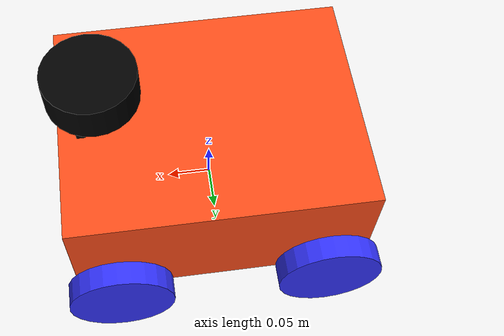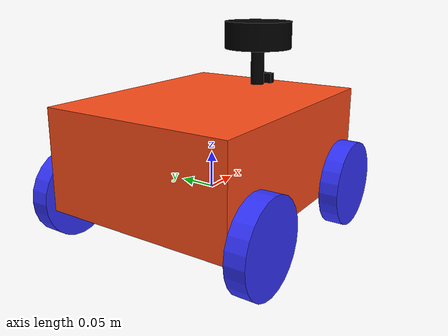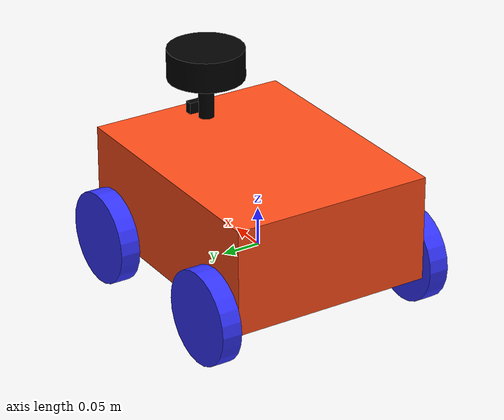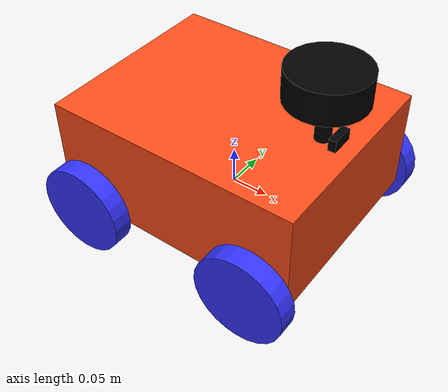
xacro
<?xml version="1.0"?>
<robot xmlns:xacro="http://www.ros.org/wiki/xacro"  name="robot">

    <xacro:include filename="robot_core_04.xacro" />

    <xacro:include filename="lidar.xacro" />
    <xacro:include filename="camera.xacro" />
    <xacro:include filename="gps.xacro" />
    <xacro:include filename="odom.xacro" />

    <xacro:include filename="gazebo_control_04.xacro" />

</robot>

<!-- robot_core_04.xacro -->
<robot xmlns:xacro="http://www.ros.org/wiki/xacro">

    <xacro:include filename="inertial_macros.xacro" />

    <!-- CHASSIS  CONF-->
    <xacro:property name="chassis_length" value="0.335"/>
    <xacro:property name="chassis_width" value="0.265"/>
    <xacro:property name="chassis_height" value="0.138"/>
    <xacro:property name="chassis_mass" value="1.5"/>

    <!--  ROUES CONF -->
    <xacro:property name="wheel_radius" value="0.06"/>
    <xacro:property name="wheel_thickness" value="0.026"/>
    <xacro:property name="wheel_mass" value="0.09"/>
    <xacro:property name="wheel_offset_z" value="0.01"/>

    <!-- POSITIONS DES ROUES  -->
    <xacro:property name="wheel_offset_x_front" value="0.120"/>
    <xacro:property name="wheel_offset_x_rear" value="-0.120"/>
    <xacro:property name="wheel_offset_y" value="0.1485"/>

    <material name="white">
        <color rgba="1 1 1 1" />
    </material>

    <material name="orange">
        <color rgba="1 0.3 0.1 1"/>
    </material>

    <material name="blue">
        <color rgba="0.2 0.2 1 1"/>
    </material>

    <material name="black">
        <color rgba="0 0 0 1"/>
    </material>

    <material name="red">
        <color rgba="1 0 0 1"/>
    </material>

    <link name="base_link">
    </link>

    <joint name="base_footprint_joint" type="fixed">
        <parent link="base_link"/>
        <child link="base_footprint"/>
        <origin xyz="0 0 0" rpy="0 0 0"/>
    </joint>

    <link name="base_footprint">
    </link>

    <joint name="chassis_joint" type="fixed">
        <parent link="base_link"/>
        <child link="chassis"/>
        <origin xyz="0 0 ${-wheel_offset_z}"/>
    </joint>

    <link name="chassis">
        <visual>
            <origin xyz="0 0 ${chassis_height/2}"/>
            <geometry>
                <box size="${chassis_length} ${chassis_width} ${chassis_height}"/>
            </geometry>
            <material name="orange"/>
        </visual>
        <collision>
            <origin xyz="0 0 ${chassis_height/2}"/>
            <geometry>
                <box size="${chassis_length} ${chassis_width} ${chassis_height}"/>
            </geometry>
        </collision>
        <xacro:inertial_box mass="${chassis_mass}" x="${chassis_length}" y="${chassis_width}" z="${chassis_height}">
            <origin xyz="0 0 ${chassis_height/2}" rpy="0 0 0"/>
        </xacro:inertial_box>
    </link>

    <!-- MACRO POUR CRÉER UNE ROUE -->
    <xacro:macro name="wheel" params="prefix x_pos y_pos">
        <joint name="${prefix}_wheel_joint" type="continuous">
            <parent link="base_link"/>
            <child link="${prefix}_wheel"/>
            <origin xyz="${x_pos} ${y_pos} 0" rpy="${-pi/2} 0 0" />
            <axis xyz="0 0 1"/>
        </joint>

        <link name="${prefix}_wheel">
            <visual>
                <geometry>
                    <cylinder radius="${wheel_radius}" length="${wheel_thickness}"/>
                </geometry>
                <material name="blue"/>
            </visual>
            <collision>
                <geometry>
                    <sphere radius="${wheel_radius}"/>
                </geometry>
            </collision>
            <xacro:inertial_cylinder mass="${wheel_mass}" length="${wheel_thickness}" radius="${wheel_radius}">
                <origin xyz="0 0 0" rpy="0 0 0"/>
            </xacro:inertial_cylinder>
        </link>
    </xacro:macro>

    <!-- Roues avant -->
    <xacro:wheel prefix="front_left" x_pos="${wheel_offset_x_front}" y_pos="${wheel_offset_y}"/>
    <xacro:wheel prefix="front_right" x_pos="${wheel_offset_x_front}" y_pos="${-wheel_offset_y}"/>

    <!-- Roues arrière -->
    <xacro:wheel prefix="rear_left" x_pos="${wheel_offset_x_rear}" y_pos="${wheel_offset_y}"/>
    <xacro:wheel prefix="rear_right" x_pos="${wheel_offset_x_rear}" y_pos="${-wheel_offset_y}"/>

</robot>

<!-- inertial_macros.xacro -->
<robot xmlns:xacro="http://www.ros.org/wiki/xacro" >

    <!-- Specify some standard inertial calculations https://en.wikipedia.org/wiki/List_of_moments_of_inertia -->
    <!-- These make use of xacro's mathematical functionality -->

    <xacro:macro name="inertial_sphere" params="mass radius *origin">
        <inertial>
            <xacro:insert_block name="origin"/>
            <mass value="${mass}" />
            <inertia ixx="${(2/5) * mass * (radius*radius)}" ixy="0.0" ixz="0.0"
                    iyy="${(2/5) * mass * (radius*radius)}" iyz="0.0"
                    izz="${(2/5) * mass * (radius*radius)}" />
        </inertial>
    </xacro:macro>

    <xacro:macro name="inertial_box" params="mass x y z *origin">
        <inertial>
            <xacro:insert_block name="origin"/>
            <mass value="${mass}" />
            <inertia ixx="${(1/12) * mass * (y*y+z*z)}" ixy="0.0" ixz="0.0"
                    iyy="${(1/12) * mass * (x*x+z*z)}" iyz="0.0"
                    izz="${(1/12) * mass * (x*x+y*y)}" />
        </inertial>
    </xacro:macro>

    <xacro:macro name="inertial_cylinder" params="mass length radius *origin">
        <inertial>
            <xacro:insert_block name="origin"/>
            <mass value="${mass}" />
            <inertia ixx="${(1/12) * mass * (3*radius*radius + length*length)}" ixy="0.0" ixz="0.0"
                    iyy="${(1/12) * mass * (3*radius*radius + length*length)}" iyz="0.0"
                    izz="${(1/2) * mass * (radius*radius)}" />
        </inertial>
    </xacro:macro>

</robot>

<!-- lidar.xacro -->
<robot xmlns:xacro="http://www.ros.org/wiki/xacro" >

    <joint name="laser_joint" type="fixed">
        <parent link="chassis"/>
        <child link="laser_frame"/>
        <origin xyz="0.122 0 0.212" rpy="0 0 0"/>
    </joint>

    <link name="laser_frame">
        <visual>
            <geometry>
                <cylinder radius="0.05" length="0.04"/>
            </geometry>
            <material name="black"/>
        </visual>
        <visual>
            <origin xyz="0 0 -0.05"/>
            <geometry>
                <cylinder radius="0.01" length="0.1"/>
            </geometry>
            <material name="black"/>
        </visual>
        <collision>
            <geometry>
                <cylinder radius="0.05" length="0.04"/>
            </geometry>
        </collision>
        <xacro:inertial_cylinder mass="0.1" length="0.04" radius="0.05">
            <origin xyz="0 0 0" rpy="0 0 0"/>
        </xacro:inertial_cylinder>
    </link>

    <gazebo reference="laser_frame">
        <material>Gazebo/Black</material>

        <sensor name='laser' type='gpu_lidar'>
            <pose>0 0 0 0 0 0</pose>
            <topic>scan</topic>
            <gz_frame_id>laser_frame</gz_frame_id>
            <update_rate>10</update_rate>
            <lidar>
              <scan>
                <horizontal>
                  <samples>640</samples>
                  <resolution>1</resolution>
                  <min_angle>-1.396263</min_angle>
                  <max_angle>1.396263</max_angle>
                </horizontal>
                <vertical>
                  <samples>1</samples>
                  <resolution>1</resolution>
                  <min_angle>0.0</min_angle>
                  <max_angle>0.0</max_angle>
                </vertical>
              </scan>
              <range>
                <min>0.08</min>
                <max>10.0</max>
                <resolution>0.01</resolution>
              </range>
            </lidar>
            <visualize>true</visualize>
          </sensor>
    </gazebo>

</robot>

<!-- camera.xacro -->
<robot xmlns:xacro="http://www.ros.org/wiki/xacro" >

    <joint name="camera_joint" type="fixed">
        <parent link="chassis"/>
        <child link="camera_link"/>
        <origin xyz="0.142 0 0.138" rpy="0 0 0"/>
    </joint>

    <link name="camera_link">
        <visual>
            <geometry>
                <box size="0.010 0.03 0.03"/>
            </geometry>
            <material name="black"/>
        </visual>
        <visual>
            <origin xyz="0 0 -0.05"/>
            <geometry>
                <cylinder radius="0.002" length="0.1"/>
            </geometry>
            <material name="black"/>
        </visual>
    </link>

    <joint name="camera_optical_joint" type="fixed">
        <parent link="camera_link"/>
        <child link="camera_link_optical"/>
        <origin xyz="0 0 0" rpy="${-pi/2} 0 ${-pi/2}"/>
    </joint>

    <link name="camera_link_optical"></link>

    <gazebo reference="camera_link">
        <material>Gazebo/Black</material>

        <sensor name="rgbd_camera" type="rgbd_camera">
            <update_rate>20</update_rate>
            <topic>depth_camera</topic>
            <gz_frame_id>camera_link</gz_frame_id>

            <camera>
                <horizontal_fov>1.089</horizontal_fov>
                <image>
                    <width>640</width>
                    <height>480</height>
                    <format>RGB_INT8</format>
                </image>
                <clip>
                    <near>0.05</near>
                    <far>10.0</far>
                </clip>

            </camera>

            <depth_camera>
                <clip>
                    <near>0.05</near>
                    <far>10.0</far>
                </clip>
                <noise>
                    <type>gaussian</type>
                    <mean>0.0</mean>
                    <stddev>0.001</stddev>
                </noise>
            </depth_camera>

            <always_on>1</always_on>
            <visualize>true</visualize>
        </sensor>
    </gazebo>

</robot>

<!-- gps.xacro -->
<robot xmlns:xacro="http://www.ros.org/wiki/xacro">

  <joint name="gnss_joint" type="fixed">
    <parent link="chassis"/>
    <child link="gnss_frame"/>
    <origin xyz="0.10 0 0.80" rpy="0 0 0"/>
  </joint>

  <link name="gnss_frame">

  </link>

  <gazebo reference="gnss_frame">
    <material>Gazebo/Black</material>

    <sensor name="gnss" type="navsat">
      <pose>0 0 0 0 0 0</pose>

      <topic>/gnss/fix</topic>

      <gz_frame_id>gnss_frame</gz_frame_id>
      <update_rate>10</update_rate>

      <navsat>

        <position_sensing>
          <horizontal>
            <noise type="gaussian">
              <mean>0.0</mean>
              <stddev>0.0001</stddev>
            </noise>
          </horizontal>
          <vertical>
            <noise type="gaussian">
              <mean>0.0</mean>
              <stddev>0.0001</stddev>
            </noise>
          </vertical>
        </position_sensing>
        <velocity_sensing>
          <noise type="gaussian">
            <mean>0.0</mean>
            <stddev>0.0001</stddev>
          </noise>
        </velocity_sensing>
      </navsat>

      <visualize>true</visualize>
    </sensor>
  </gazebo>

</robot>
